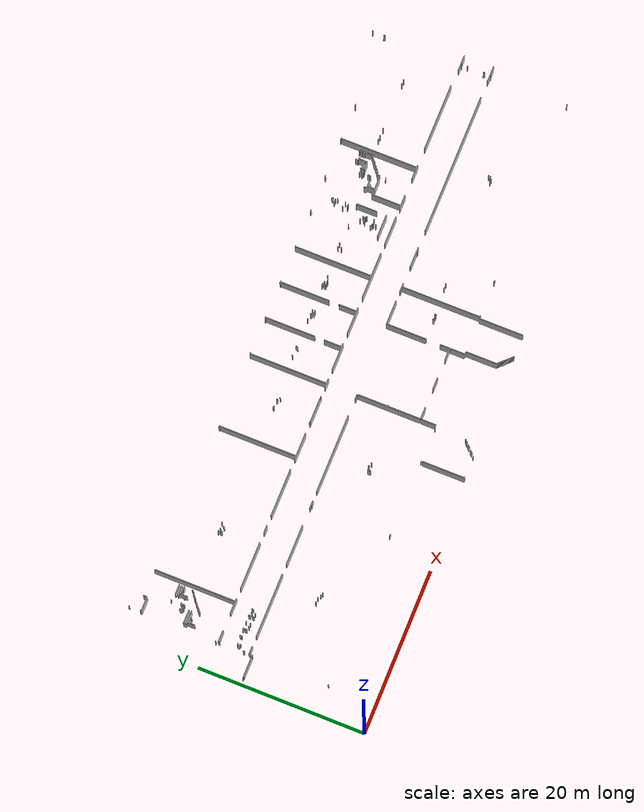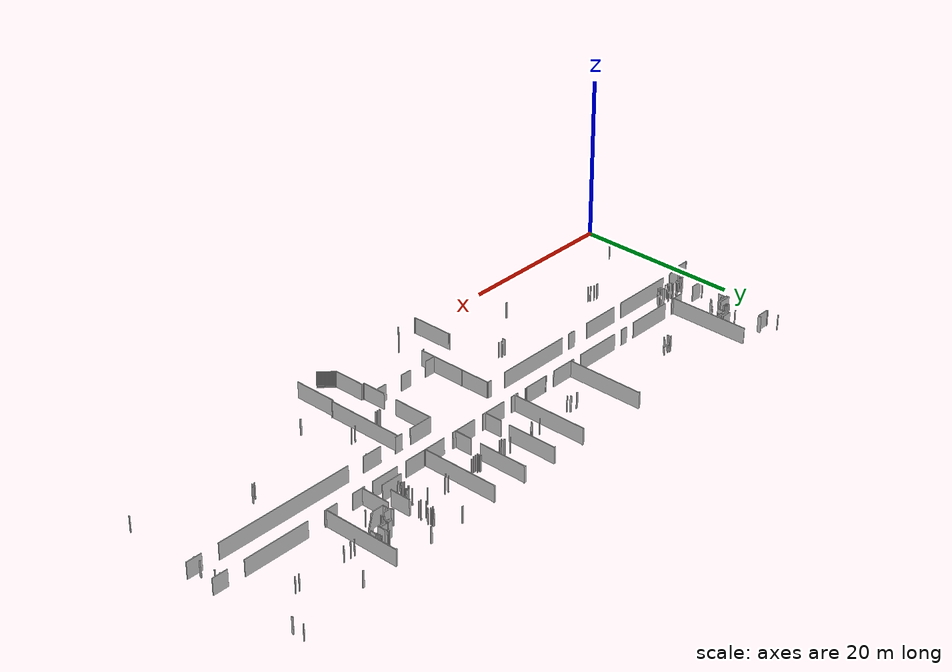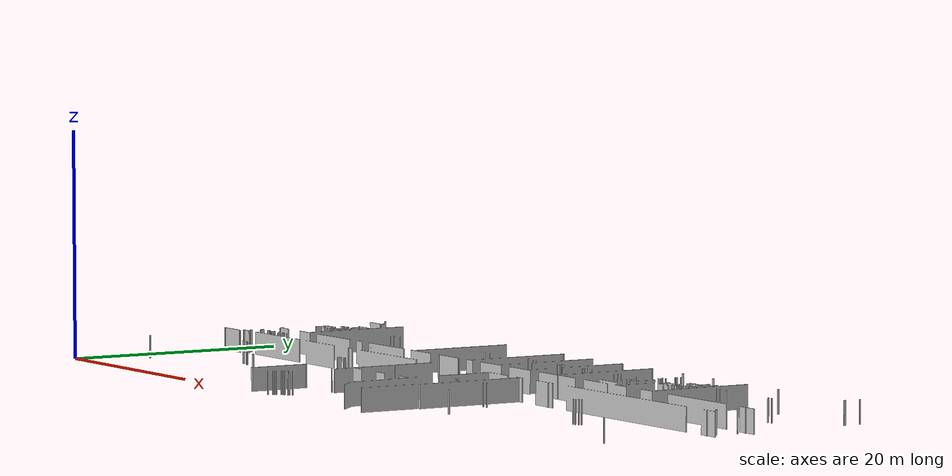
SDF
<sdf version='1.5'>
    <model name="walls">
      <static>true</static>
      <link name="link">
        <inertial>
          <pose>0 0 0 0 0 0</pose>
          <mass>1.0</mass>
          <inertia>
            <ixx>0.0385483333333</ixx>
            <ixy>000000</ixy>
            <ixz>0.000000</ixz>
            <iyy>0.107087533333</iyy>
            <iyz>0.000000</iyz>
            <izz>0.1243542</izz>
          </inertia>
        </inertial>
        <collision name="collision">
          <pose>0 0 0 0 0 0</pose>
          <geometry>
            <mesh>
                <uri>model://2WD_SLAM/map/map_model/env_map/baseline_map.stl</uri>
            </mesh>
          </geometry>
        </collision>
        <visual name="visual">
          <pose>0 0 0 0 0 0</pose>
          <geometry>
            <mesh>
                <uri>model://2WD_SLAM/map/map_model/env_map/baseline_map.stl</uri>
            </mesh>
          </geometry>
        </visual>
      </link>
    </model>
</sdf>
